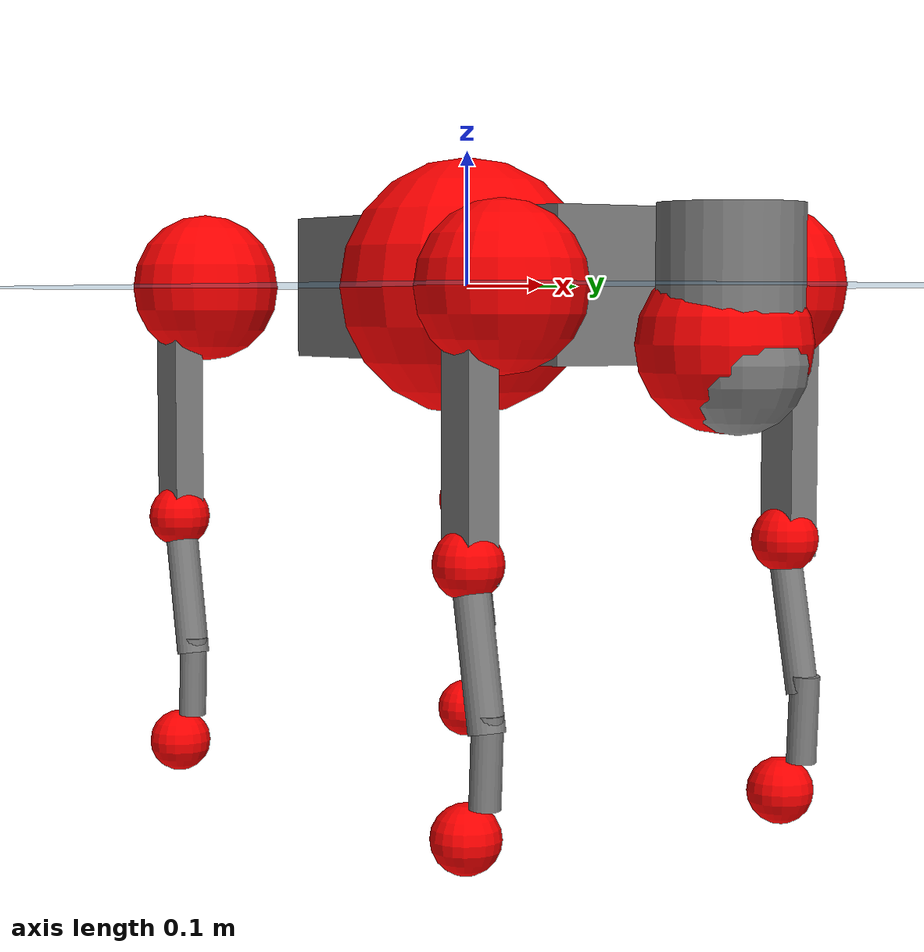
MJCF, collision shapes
<mujoco model="go2">
  <compiler angle="radian" assetdir="assets" balanceinertia="true" inertiafromgeom="false"/>

  <option timestep="0.005" density="1.2" viscosity="2e-05"/>

  <size nkey="1"/>

  <visual>
    <quality shadowsize="8192"/>
    <map shadowclip="0.5"/>
  </visual>

  <default>
    <default class="/">
      <geom contype="0" conaffinity="0" group="1" solref="-1000 -80"/>
      <site size="0.01 0.005 0.005" group="5"/>
      <general forcelimited="true" biastype="affine" gainprm="20" biasprm="0 -20 -0.5"/>
      <default class="go2">
        <joint armature="0.01" damping="0.01" frictionloss="0.2"/>
        <geom condim="1" margin="0.001"/>
        <default class="visual">
          <geom type="mesh" group="2"/>
        </default>
        <default class="collision">
          <geom group="3"/>
          <default class="foot">
            <geom size="0.022 0 0" condim="6" priority="1" friction="0.8 0.02 0.01" solimp="0.015 1 0.022"/>
          </default>
        </default>
        <default class="reward_collision_sphere">
          <geom group="5" rgba="1 0 0 1"/>
        </default>
      </default>
    </default>
  </default>

  <asset>
    <texture type="skybox" colorspace="auto" name="//unnamed_texture_0" builtin="gradient" rgb1="0.95 0.95 0.95" rgb2="0.95 0.95 0.95" width="100" height="600"/>
    <texture type="2d" colorspace="auto" name="texplane" builtin="checker" rgb1="0.345 0.575 0.748" rgb2="0.345 0.575 0.748" markrgb="1 1 1" width="512" height="512"/>
    <material name="MatPlane" class="/" texture="texplane" texuniform="true" texrepeat="2 2" specular="0.9"/>
    <material name="metal" class="/" rgba="0.9 0.95 0.95 1"/>
    <material name="black" class="/" rgba="0 0 0 1"/>
    <material name="white" class="/"/>
    <material name="gray" class="/" rgba="0.671705 0.692426 0.77427 1"/>
    <mesh name="base_0" class="/" file="base_0.obj"/>
    <mesh name="base_1" class="/" file="base_1.obj"/>
    <mesh name="base_2" class="/" file="base_2.obj"/>
    <mesh name="base_3" class="/" file="base_3.obj"/>
    <mesh name="base_4" class="/" file="base_4.obj"/>
    <mesh name="hip_0" class="/" file="hip_0.obj"/>
    <mesh name="hip_1" class="/" file="hip_1.obj"/>
    <mesh name="thigh_0" class="/" file="thigh_0.obj"/>
    <mesh name="thigh_1" class="/" file="thigh_1.obj"/>
    <mesh name="thigh_mirror_0" class="/" file="thigh_mirror_0.obj"/>
    <mesh name="thigh_mirror_1" class="/" file="thigh_mirror_1.obj"/>
    <mesh name="calf_0" class="/" file="calf_0.obj"/>
    <mesh name="calf_1" class="/" file="calf_1.obj"/>
    <mesh name="calf_mirror_0" class="/" file="calf_mirror_0.obj"/>
    <mesh name="calf_mirror_1" class="/" file="calf_mirror_1.obj"/>
    <mesh name="foot" class="/" file="foot.obj"/>
  </asset>

  <worldbody>
    <geom name="floor" class="/" size="100 100 0.125" type="plane" group="0" material="MatPlane"/>
    <light name="toplight_shadow" class="/" pos="0 0 5" dir="0.0990148 0.0990148 -0.990148" type="directional" ambient="0.04 0.04 0.04" diffuse="0.55 0.55 0.55" specular="0.12 0.12 0.12"/>
    <light name="toplight_fill" class="/" pos="0 0 5" dir="0.0990148 0.0990148 -0.990148" type="directional" castshadow="false" ambient="0.04 0.04 0.04" diffuse="0.3 0.3 0.3" specular="0.08 0.08 0.08"/>
    <body name="trunk" childclass="go2" pos="0.00158216 -0.00102489 -0.000369642" quat="1 -0.000175456 5.6001e-05 -6.62357e-05">
      <inertial pos="0.0228371 -0.00055712 -0.00475978" quat="0.00149156 0.711518 -0.00155561 0.702665" mass="6.08225" diaginertia="0.165193 0.0768759 0.0109235"/>
      <joint name="//unnamed_joint_0" type="free" armature="0" damping="0" frictionloss="0"/>
      <geom name="//unnamed_geom_1" class="visual" material="black" mesh="base_0"/>
      <geom name="//unnamed_geom_2" class="visual" material="black" mesh="base_1"/>
      <geom name="//unnamed_geom_3" class="visual" material="black" mesh="base_2"/>
      <geom name="//unnamed_geom_4" class="visual" material="white" mesh="base_3"/>
      <geom name="//unnamed_geom_5" class="visual" material="gray" mesh="base_4"/>
      <geom name="trunk_1" class="collision" size="0.180856 0.0449496 0.0548049" type="box"/>
      <geom name="trunk_2" class="collision" size="0.0480744 0.043267" pos="0.308786 0 0.00850494" type="cylinder"/>
      <geom name="trunk_3" class="collision" size="0.04519" pos="0.317453 0 -0.0510296"/>
      <geom name="//unnamed_geom_9" class="reward_collision_sphere" size="0.0961489"/>
      <geom name="//unnamed_geom_10" class="reward_collision_sphere" size="0.0576893" pos="0.303368 0 -0.0382722"/>
      <site name="imu" pos="-0.0308454 -0.00232872 0.0255736" size="0.00961489"/>
      <camera name="track" pos="0 -1.90103 0" quat="0.707107 0.707107 0 0" mode="trackcom"/>
      <camera name="ego_camera" pos="0.338039 0 0.0382722" quat="-0.5 -0.5 0.5 0.5"/>
      <body name="FL_hip" pos="0.209777 0.0451906 0.000863433" quat="1 -0.000151283 0.000518215 0.000149945">
        <inertial pos="-0.0075505 0.00298925 0.000175507" quat="0.496713 0.498799 0.50559 0.498854" mass="0.605032" diaginertia="0.00132384 0.000461024 0.000212558"/>
        <joint name="FL_hip_joint" pos="0 0 0" axis="0.999898 -0.0121735 0.00744299" range="-1.05736 1.05001" armature="0.00859914" damping="0.00704048" frictionloss="0.184172"/>
        <geom name="//unnamed_geom_11" class="visual" material="metal" mesh="hip_0"/>
        <geom name="//unnamed_geom_12" class="visual" material="gray" mesh="hip_1"/>
        <geom name="//unnamed_geom_13" class="collision" size="0.0442285 0.0192298" pos="0 0.0760411 0" quat="0.707107 0.707107 0 0" type="cylinder"/>
        <geom name="//unnamed_geom_14" class="reward_collision_sphere" size="0.0576893" pos="0 0.066536 0"/>
        <body name="FL_thigh" pos="-0.000553033 0.0915071 0.00110889" quat="1 0.000219779 0.000397085 -0.000120114">
          <inertial pos="-0.00470989 -0.021113 -0.0298366" quat="0.828749 0.0888883 -0.0218715 0.552084" mass="1.03691" diaginertia="0.00895707 0.00458182 0.000397075"/>
          <joint name="FL_thigh_joint" pos="0 0 0" axis="0.00633329 0.99998 -0.000493866" range="-1.59076 3.48985" armature="0.0101944" damping="0.00541007" frictionloss="0.196955"/>
          <geom name="//unnamed_geom_15" class="visual" material="metal" mesh="thigh_0"/>
          <geom name="//unnamed_geom_16" class="visual" material="gray" mesh="thigh_1"/>
          <geom name="//unnamed_geom_17" class="collision" size="0.102399 0.0117782 0.0163453" pos="0 0 -0.0905776" quat="0.707107 0 0.707107 0" type="box"/>
          <body name="FL_calf" pos="-0.000400745 -0.0026691 -0.181353" quat="1 9.36317e-05 -0.000129114 -1.78056e-05">
            <inertial pos="0.00619102 -0.000484473 -0.120127" quat="0.70792 -0.00283766 -0.0119932 0.706185" mass="0.212751" diaginertia="0.00219748 0.00113342 2.31886e-05"/>
            <joint name="FL_calf_joint" pos="0 0 0" axis="0.0109331 0.999932 -0.00401674" stiffness="0.00278668" range="-2.72021 -0.843916" armature="0.00966338" damping="0.00246753" frictionloss="0.197473"/>
            <geom name="//unnamed_geom_18" class="visual" material="gray" mesh="calf_0"/>
            <geom name="//unnamed_geom_19" class="visual" material="black" mesh="calf_1"/>
            <geom name="FL_calf0" class="collision" size="0.0115379 0.0576893" pos="0.00866767 0 -0.0510296" quat="0.994493 0 -0.104807 0" type="cylinder"/>
            <geom name="//unnamed_geom_21" class="collision" size="0.0105764 0.0312484" pos="0.0216692 0 -0.125873" quat="0.999688 0 0.0249974 0" type="cylinder"/>
            <geom name="//unnamed_geom_22" class="visual" pos="0 0 -0.181155" quat="1 0 0 0" material="black" mesh="foot"/>
            <geom name="FL_foot" class="foot" size="0.0183521" pos="-0.00216692 0 -0.181155"/>
            <geom name="//unnamed_geom_24" class="reward_collision_sphere" size="0.0240372"/>
            <geom name="//unnamed_geom_25" class="reward_collision_sphere" size="0.0240372" pos="-0.00216692 0 -0.181155"/>
            <site name="FL_foot" class="foot" pos="-0.00216692 0 -0.181155" size="0.00961489"/>
          </body>
        </body>
      </body>
      <body name="FR_hip" pos="0.208133 -0.0415513 -0.0012849" quat="1 6.46926e-05 -7.91609e-05 0.000102525">
        <inertial pos="-0.00346176 -0.00249713 -0.00244874" quat="0.499036 0.504411 0.499069 0.497456" mass="0.621055" diaginertia="0.0013494 0.000474089 0.000218872"/>
        <joint name="FR_hip_joint" pos="0 0 0" axis="0.999985 -0.00314801 0.00452995" stiffness="0.00451743" range="-1.08707 1.06064" armature="0.00973962" damping="0.0138344" frictionloss="0.18109"/>
        <geom name="//unnamed_geom_26" class="visual" pos="0 8.71331e-10 3.73732e-08" quat="4.63268e-05 1 0 0" material="metal" mesh="hip_0"/>
        <geom name="//unnamed_geom_27" class="visual" pos="0 1.41253e-09 -9.24382e-08" quat="4.63268e-05 1 0 0" material="gray" mesh="hip_1"/>
        <geom name="//unnamed_geom_28" class="collision" size="0.0442285 0.0192298" pos="0 -0.0760411 0" quat="0.707107 0.707107 0 0" type="cylinder"/>
        <geom name="//unnamed_geom_29" class="reward_collision_sphere" size="0.0576893" pos="0 -0.066536 0"/>
        <body name="FR_thigh" pos="0.00038483 -0.0913337 5.99632e-05" quat="1 -6.6976e-06 -6.73911e-05 -4.96338e-05">
          <inertial pos="-0.0028081 0.0237198 -0.0284129" quat="0.551868 -0.0205476 0.085065 0.829327" mass="1.01294" diaginertia="0.00882324 0.00449767 0.000386931"/>
          <joint name="FR_thigh_joint" pos="0 0 0" axis="0.000141729 -1 -0.000720943" range="-3.50233 1.55206" armature="0.00996468" damping="0.0106071" frictionloss="0.192658"/>
          <geom name="//unnamed_geom_30" class="visual" material="metal" mesh="thigh_mirror_0"/>
          <geom name="//unnamed_geom_31" class="visual" material="gray" mesh="thigh_mirror_1"/>
          <geom name="//unnamed_geom_32" class="collision" size="0.102399 0.0117782 0.0163453" pos="0 0 -0.0905776" quat="0.707107 0 0.707107 0" type="box"/>
          <body name="FR_calf" pos="-0.000235889 -0.000908107 -0.179826" quat="0.999999 -0.000852806 0.00057284 0.000315678">
            <inertial pos="0.00923582 0.00083368 -0.119453" quat="0.702973 -0.00449577 0.00172978 0.7112" mass="0.210327" diaginertia="0.00219282 0.00114922 2.41788e-05"/>
            <joint name="FR_calf_joint" pos="0 0 0" axis="-0.00118202 -0.999997 0.00231132" stiffness="0.00208902" range="0.795368 2.71747" armature="0.00985429" damping="0.0177184" frictionloss="0.20662"/>
            <geom name="//unnamed_geom_33" class="visual" material="gray" mesh="calf_mirror_0"/>
            <geom name="//unnamed_geom_34" class="visual" material="black" mesh="calf_mirror_1"/>
            <geom name="FR_calf0" class="collision" size="0.0124994 0.0576893" pos="0.0108346 0 -0.0510296" quat="0.995004 0 -0.0998334 0" type="cylinder"/>
            <geom name="//unnamed_geom_36" class="collision" size="0.0105764 0.0312484" pos="0.0216692 0 -0.125873" quat="0.999688 0 0.0249974 0" type="cylinder"/>
            <geom name="//unnamed_geom_37" class="visual" pos="0 0 -0.181155" quat="1 0 0 0" material="black" mesh="foot"/>
            <geom name="FR_foot" class="foot" size="0.0217962" pos="-0.00216692 0 -0.181155"/>
            <geom name="//unnamed_geom_39" class="reward_collision_sphere" size="0.0240372"/>
            <geom name="//unnamed_geom_40" class="reward_collision_sphere" size="0.0240372" pos="-0.00216692 0 -0.181155"/>
            <site name="FR_foot" class="foot" pos="-0.00216692 0 -0.181155" size="0.00961489"/>
          </body>
        </body>
      </body>
      <body name="RL_hip" pos="-0.207349 0.0435428 0.00100905" quat="1 -1.11163e-05 -2.84054e-05 -5.00279e-06">
        <inertial pos="0.00777773 -0.000136132 -8.87006e-05" quat="0.509724 0.493572 0.494942 0.501598" mass="0.607864" diaginertia="0.00132647 0.000460684 0.000209608"/>
        <joint name="RL_hip_joint" pos="0 0 0" axis="-0.999894 0.00479279 0.0137416" stiffness="0.000140246" range="-1.04424 1.0253" armature="0.00965666" damping="0.00735037" frictionloss="0.201532"/>
        <geom name="//unnamed_geom_41" class="visual" pos="-2.02949e-09 0 -3.97826e-07" quat="4.63268e-05 0 1 0" material="metal" mesh="hip_0"/>
        <geom name="//unnamed_geom_42" class="visual" pos="-3.29004e-09 0 -3.52815e-07" quat="4.63268e-05 0 1 0" material="gray" mesh="hip_1"/>
        <geom name="//unnamed_geom_43" class="collision" size="0.0442285 0.0192298" pos="0 0.0760411 0" quat="0.707107 0.707107 0 0" type="cylinder"/>
        <geom name="//unnamed_geom_44" class="reward_collision_sphere" size="0.0576893" pos="0 0.066536 0"/>
        <body name="RL_thigh" pos="-0.000432359 0.0896544 0.000646646" quat="1 0.000375377 -0.000304781 -0.00010509">
          <inertial pos="-0.00410895 -0.0189329 -0.0276573" quat="0.830486 0.0866491 -0.0224968 0.549798" mass="1.0272" diaginertia="0.0089152 0.00456831 0.000381758"/>
          <joint name="RL_thigh_joint" pos="0 0 0" axis="0.00630246 0.999978 -0.00186195" range="-0.520737 4.52923" armature="0.0105302" damping="0.00394286" frictionloss="0.204209"/>
          <geom name="//unnamed_geom_45" class="visual" material="metal" mesh="thigh_0"/>
          <geom name="//unnamed_geom_46" class="visual" material="gray" mesh="thigh_1"/>
          <geom name="//unnamed_geom_47" class="collision" size="0.102399 0.0117782 0.0163453" pos="0 0 -0.0905776" quat="0.707107 0 0.707107 0" type="box"/>
          <body name="RL_calf" pos="-0.000110548 0.000815781 -0.183345" quat="0.999999 0.000826155 -2.22366e-05 -0.000665701">
            <inertial pos="0.00736003 -0.000338711 -0.117791" quat="0.709347 0.00351908 -0.00619742 0.704824" mass="0.210018" diaginertia="0.00223462 0.00114996 2.35788e-05"/>
            <joint name="RL_calf_joint" pos="0 0 0" axis="0.000492864 1 -0.000740609" stiffness="0.00233009" range="-2.7267 -0.836431" armature="0.00947809" damping="0.00657259" frictionloss="0.184747"/>
            <geom name="//unnamed_geom_48" class="visual" material="gray" mesh="calf_0"/>
            <geom name="//unnamed_geom_49" class="visual" material="black" mesh="calf_1"/>
            <geom name="RL_calf0" class="collision" size="0.0124994 0.0576893" pos="0.0108346 0 -0.0510296" quat="0.995004 0 -0.0998334 0" type="cylinder"/>
            <geom name="//unnamed_geom_51" class="collision" size="0.0105764 0.0312484" pos="0.0216692 0 -0.125873" quat="0.999688 0 0.0249974 0" type="cylinder"/>
            <geom name="//unnamed_geom_52" class="visual" pos="0 0 -0.181155" quat="1 0 0 0" material="black" mesh="foot"/>
            <geom name="RL_foot" class="foot" size="0.0178428" pos="-0.00216692 0 -0.181155"/>
            <geom name="//unnamed_geom_54" class="reward_collision_sphere" size="0.0240372"/>
            <geom name="//unnamed_geom_55" class="reward_collision_sphere" size="0.0240372" pos="-0.00216692 0 -0.181155"/>
            <site name="RL_foot" class="foot" pos="-0.00216692 0 -0.181155" size="0.00961489"/>
          </body>
        </body>
      </body>
      <body name="RR_hip" pos="-0.211543 -0.0454699 -0.000498206" quat="1 -5.10244e-06 -0.000299024 0.000357853">
        <inertial pos="0.00600933 -0.00247052 -0.000227077" quat="0.502382 0.501703 0.489787 0.50598" mass="0.602499" diaginertia="0.00130961 0.000461419 0.000212637"/>
        <joint name="RR_hip_joint" pos="0 0 0" axis="-0.999932 0.0104313 0.00512997" stiffness="0.00366688" range="-1.04804 1.03059" armature="0.00997672" damping="0" frictionloss="0.189193"/>
        <geom name="//unnamed_geom_56" class="visual" pos="2.02488e-09 8.71331e-10 -4.35199e-07" quat="2.14617e-09 4.63268e-05 4.63268e-05 -1" material="metal" mesh="hip_0"/>
        <geom name="//unnamed_geom_57" class="visual" pos="3.30142e-09 1.41253e-09 -2.60377e-07" quat="2.14617e-09 4.63268e-05 4.63268e-05 -1" material="gray" mesh="hip_1"/>
        <geom name="//unnamed_geom_58" class="collision" size="0.0442285 0.0192298" pos="0 -0.0760411 0" quat="0.707107 0.707107 0 0" type="cylinder"/>
        <geom name="//unnamed_geom_59" class="reward_collision_sphere" size="0.0576893" pos="0 -0.066536 0"/>
        <body name="RR_thigh" pos="0.00043706 -0.0903325 0.00035374" quat="1 -0.000222232 0.000113717 0.000178072">
          <inertial pos="-0.00415141 0.0209715 -0.0285941" quat="0.543668 -0.0162259 0.0800956 0.835312" mass="1.02624" diaginertia="0.00886297 0.00458294 0.000401291"/>
          <joint name="RR_thigh_joint" pos="0 0 0" axis="-0.00031915 -1 -0.0005383" range="-4.53518 0.505139" armature="0.0101341" damping="0.0103372" frictionloss="0.200131"/>
          <geom name="//unnamed_geom_60" class="visual" material="metal" mesh="thigh_mirror_0"/>
          <geom name="//unnamed_geom_61" class="visual" material="gray" mesh="thigh_mirror_1"/>
          <geom name="//unnamed_geom_62" class="collision" size="0.102399 0.0117782 0.0163453" pos="0 0 -0.0905776" quat="0.707107 0 0.707107 0" type="box"/>
          <body name="RR_calf" pos="0.000655369 -0.00154169 -0.181954" quat="1 -9.14926e-06 3.80409e-06 -4.12068e-06">
            <inertial pos="0.00514833 -0.00154225 -0.118473" quat="0.70321 -0.00558728 0.00144457 0.710959" mass="0.216372" diaginertia="0.00220826 0.00114723 2.35087e-05"/>
            <joint name="RR_calf_joint" pos="0 0 0" axis="-0.000397629 -0.999976 0.00694757" stiffness="0.000492783" range="0.857884 2.76524" armature="0.00956442" damping="0.0107715" frictionloss="0.211728"/>
            <geom name="//unnamed_geom_63" class="visual" material="gray" mesh="calf_mirror_0"/>
            <geom name="//unnamed_geom_64" class="visual" material="black" mesh="calf_mirror_1"/>
            <geom name="RR_calf0" class="collision" size="0.0124994 0.0576893" pos="0.0108346 0 -0.0510296" quat="0.995004 0 -0.0998334 0" type="cylinder"/>
            <geom name="//unnamed_geom_66" class="collision" size="0.0105764 0.0312484" pos="0.0216692 0 -0.125873" quat="0.999688 0 0.0249974 0" type="cylinder"/>
            <geom name="//unnamed_geom_67" class="visual" pos="0 0 -0.181155" quat="1 0 0 0" material="black" mesh="foot"/>
            <geom name="RR_foot" class="foot" size="0.0227684" pos="-0.00216692 0 -0.181155"/>
            <geom name="//unnamed_geom_69" class="reward_collision_sphere" size="0.0240372"/>
            <geom name="//unnamed_geom_70" class="reward_collision_sphere" size="0.0240372" pos="-0.00216692 0 -0.181155"/>
            <site name="RR_foot" class="foot" pos="-0.00216692 0 -0.181155" size="0.00961489"/>
          </body>
        </body>
      </body>
    </body>
  </worldbody>

  <contact>
    <pair class="/" geom1="floor" geom2="FL_foot" name="//unnamed_contact_0"/>
    <pair class="/" geom1="floor" geom2="FR_foot" name="//unnamed_contact_1"/>
    <pair class="/" geom1="floor" geom2="RL_foot" name="//unnamed_contact_2"/>
    <pair class="/" geom1="floor" geom2="RR_foot" name="//unnamed_contact_3"/>
  </contact>

  <actuator>
    <general name="FL_hip" class="/" joint="FL_hip_joint" forcerange="-22.854 22.854" gainprm="19.3838" biasprm="0 -19.3838 -0.473329"/>
    <general name="FL_thigh" class="/" joint="FL_thigh_joint" forcerange="-21.7771 21.7771" gainprm="19.3838" biasprm="0 -19.3838 -0.473329"/>
    <general name="FL_calf" class="/" joint="FL_calf_joint" forcerange="-42.2129 42.2129" gainprm="19.3838" biasprm="0 -19.3838 -0.473329"/>
    <general name="FR_hip" class="/" joint="FR_hip_joint" forcerange="-22.8173 22.8173" gainprm="19.3838" biasprm="0 -19.3838 -0.473329"/>
    <general name="FR_thigh" class="/" joint="FR_thigh_joint" forcerange="-23.2128 23.2128" gainprm="19.3838" biasprm="0 -19.3838 -0.473329"/>
    <general name="FR_calf" class="/" joint="FR_calf_joint" forcerange="-43.7439 43.7439" gainprm="19.3838" biasprm="0 -19.3838 -0.473329"/>
    <general name="RL_hip" class="/" joint="RL_hip_joint" forcerange="-22.8198 22.8198" gainprm="19.3838" biasprm="0 -19.3838 -0.473329"/>
    <general name="RL_thigh" class="/" joint="RL_thigh_joint" forcerange="-22.7497 22.7497" gainprm="19.3838" biasprm="0 -19.3838 -0.473329"/>
    <general name="RL_calf" class="/" joint="RL_calf_joint" forcerange="-45.0568 45.0568" gainprm="19.3838" biasprm="0 -19.3838 -0.473329"/>
    <general name="RR_hip" class="/" joint="RR_hip_joint" forcerange="-22.6163 22.6163" gainprm="19.3838" biasprm="0 -19.3838 -0.473329"/>
    <general name="RR_thigh" class="/" joint="RR_thigh_joint" forcerange="-22.0789 22.0789" gainprm="19.3838" biasprm="0 -19.3838 -0.473329"/>
    <general name="RR_calf" class="/" joint="RR_calf_joint" forcerange="-40.0526 40.0526" gainprm="19.3838" biasprm="0 -19.3838 -0.473329"/>
  </actuator>

  <sensor>
    <gyro site="imu" name="imu_angular_velocity"/>
    <velocimeter site="imu" name="imu_linear_velocity"/>
    <framelinvel objtype="site" objname="FL_foot" name="FL_foot_global_linear_velocity"/>
    <framelinvel objtype="site" objname="FR_foot" name="FR_foot_global_linear_velocity"/>
    <framelinvel objtype="site" objname="RL_foot" name="RL_foot_global_linear_velocity"/>
    <framelinvel objtype="site" objname="RR_foot" name="RR_foot_global_linear_velocity"/>
  </sensor>

  <keyframe>
    <key name="home" qpos="0 0 0.325 1 0 0 0 0.1 0.8 -1.5 -0.1 -0.8 1.5 -0.1 0.8 -1.5 0.1 -0.8 1.5"/>
  </keyframe>
</mujoco>
